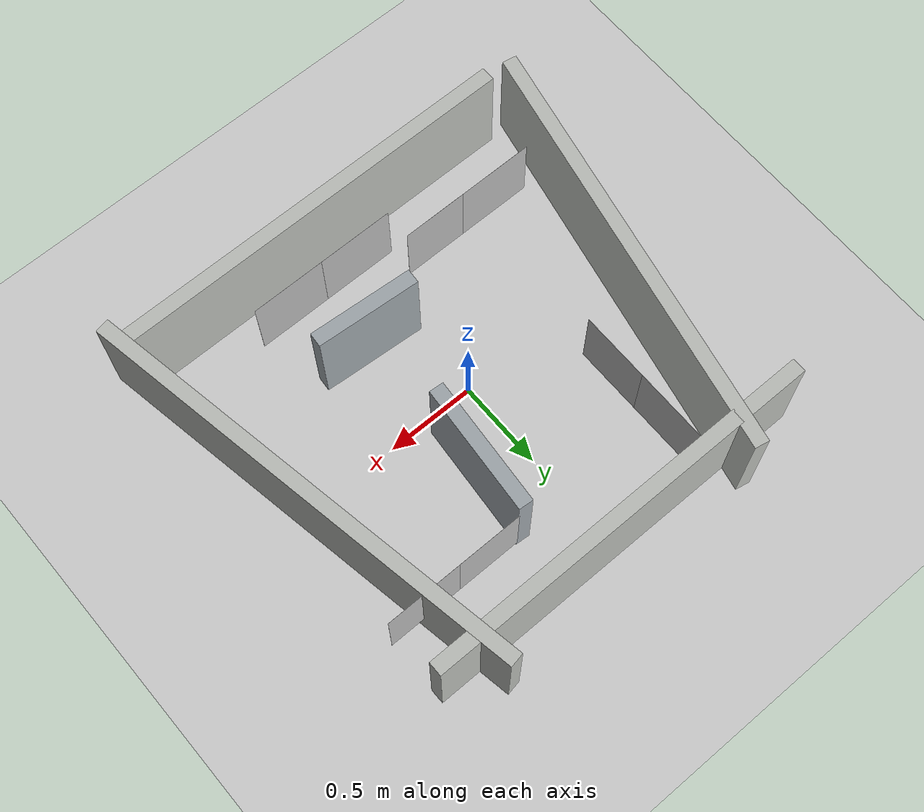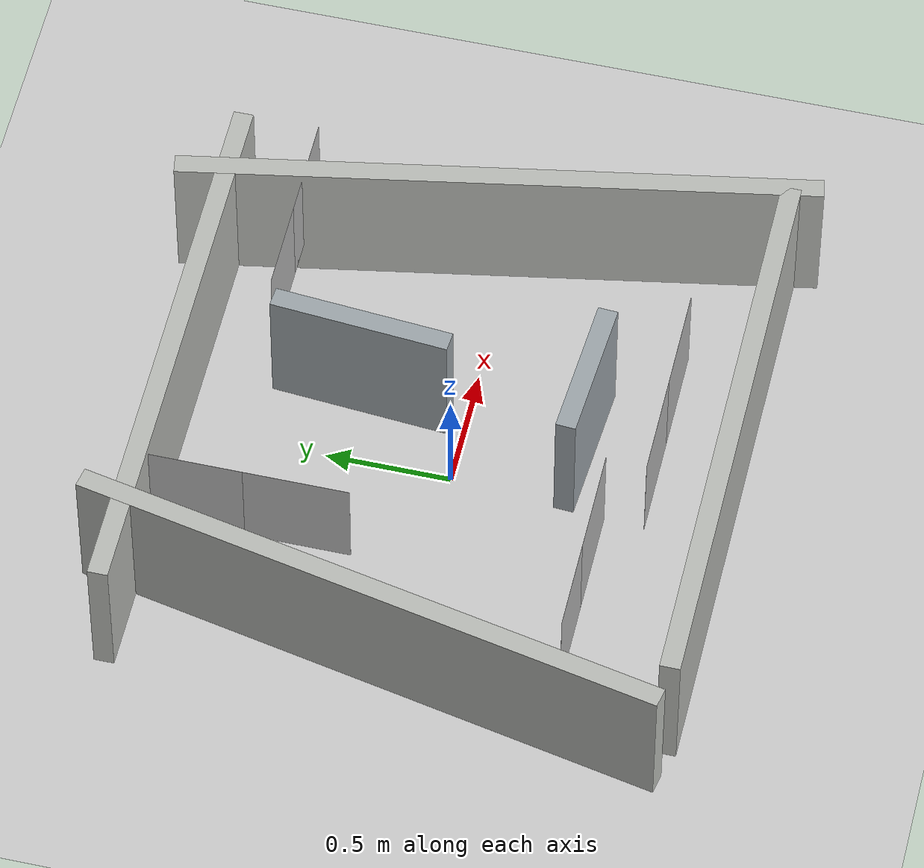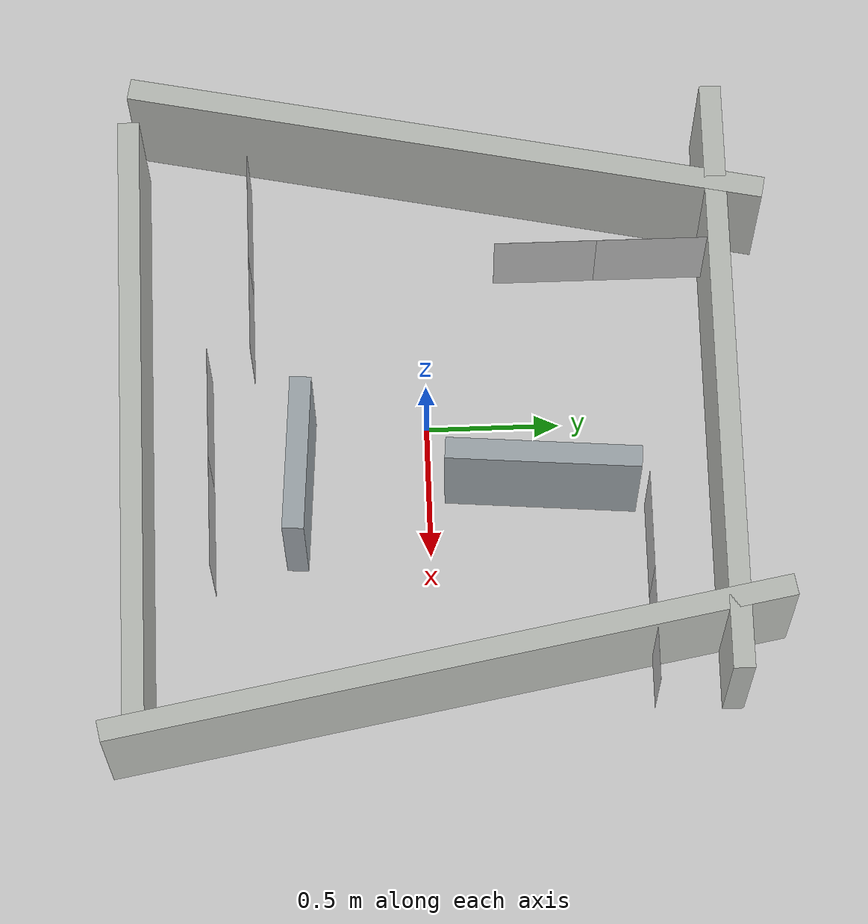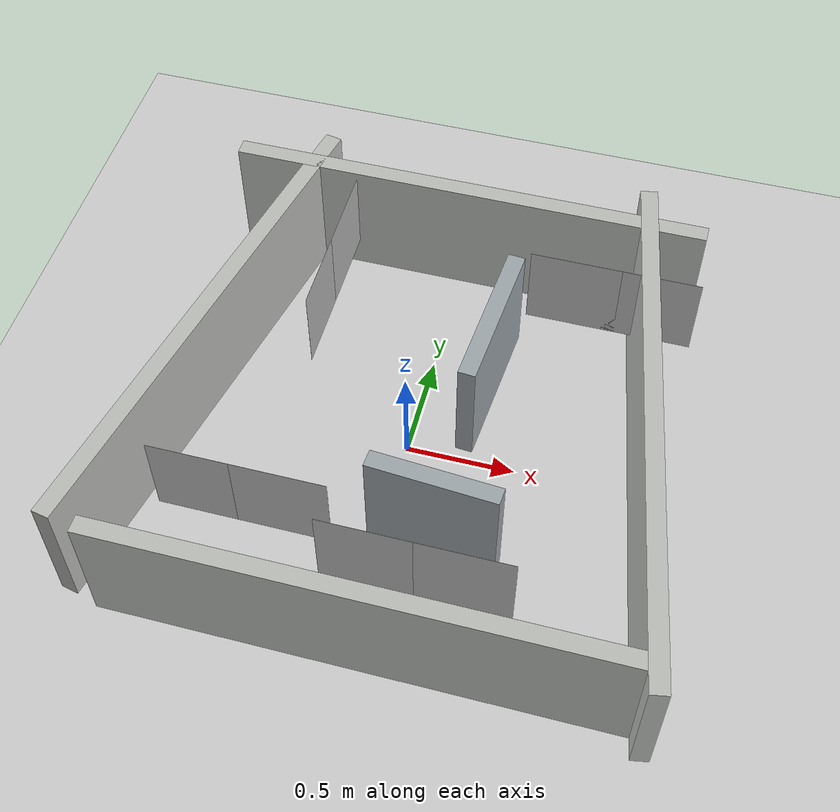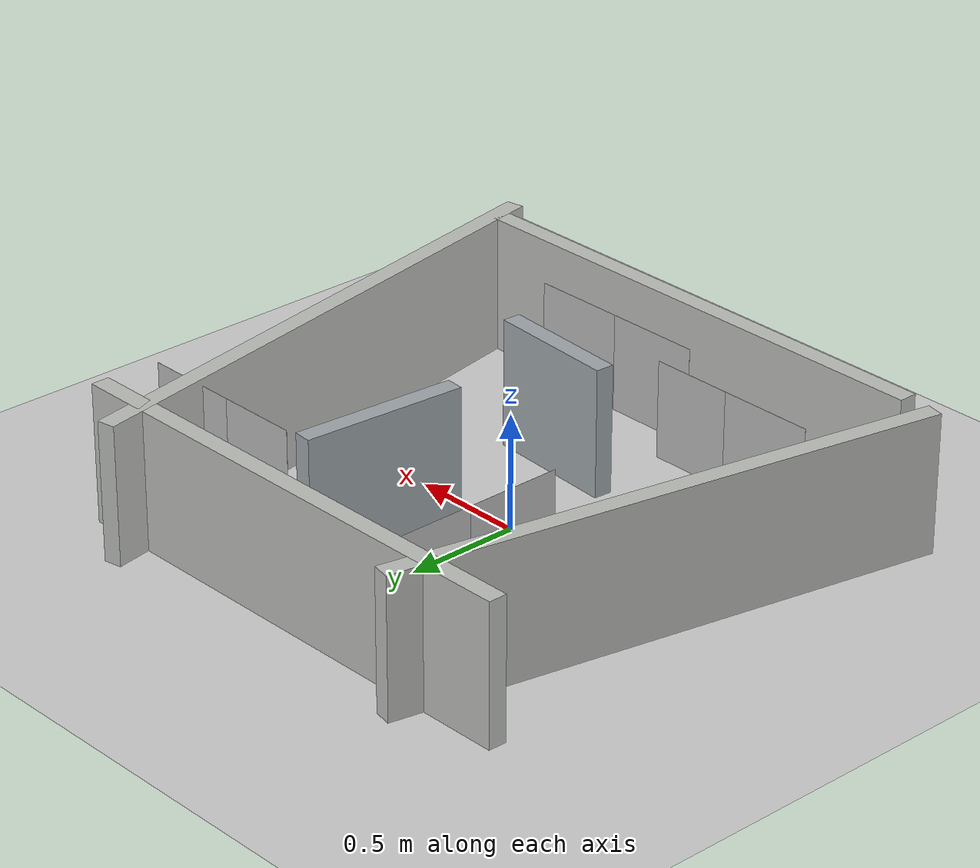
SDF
<?xml version="1.0" ?>
<sdf version="1.6">
  <world name="event_guide_world">
    <physics name="default_physics" type="ode">
      <max_step_size>0.001</max_step_size>
      <real_time_factor>1.0</real_time_factor>
      <real_time_update_rate>1000</real_time_update_rate>
    </physics>

    <scene>
      <ambient>0.65 0.65 0.65 1</ambient>
      <background>0.78 0.82 0.86 1</background>
    </scene>

    <include>
      <uri>model://sun</uri>
    </include>

    <include>
      <uri>model://ground_plane</uri>
    </include>

    <model name="event_map_walls">
      <static>true</static>
      <link name="walls">
        <collision name="left_diagonal_wall_collision">
          <pose>-0.95 0.10 0.30 0 0 -0.20</pose>
          <geometry><box><size>0.08 2.40 0.60</size></box></geometry>
        </collision>
        <visual name="left_diagonal_wall_visual">
          <pose>-0.95 0.10 0.30 0 0 -0.20</pose>
          <geometry><box><size>0.08 2.40 0.60</size></box></geometry>
          <material><ambient>0.73 0.74 0.72 1</ambient><diffuse>0.73 0.74 0.72 1</diffuse></material>
        </visual>

        <collision name="right_diagonal_wall_collision">
          <pose>1.05 0.05 0.30 0 0 0.18</pose>
          <geometry><box><size>0.08 2.55 0.60</size></box></geometry>
        </collision>
        <visual name="right_diagonal_wall_visual">
          <pose>1.05 0.05 0.30 0 0 0.18</pose>
          <geometry><box><size>0.08 2.55 0.60</size></box></geometry>
          <material><ambient>0.73 0.74 0.72 1</ambient><diffuse>0.73 0.74 0.72 1</diffuse></material>
        </visual>

        <collision name="top_wall_collision">
          <pose>0.00 1.10 0.30 0 0 0</pose>
          <geometry><box><size>2.25 0.08 0.60</size></box></geometry>
        </collision>
        <visual name="top_wall_visual">
          <pose>0.00 1.10 0.30 0 0 0</pose>
          <geometry><box><size>2.25 0.08 0.60</size></box></geometry>
          <material><ambient>0.73 0.74 0.72 1</ambient><diffuse>0.73 0.74 0.72 1</diffuse></material>
        </visual>

        <collision name="bottom_wall_collision">
          <pose>0.10 -1.08 0.30 0 0 0</pose>
          <geometry><box><size>2.30 0.08 0.60</size></box></geometry>
        </collision>
        <visual name="bottom_wall_visual">
          <pose>0.10 -1.08 0.30 0 0 0</pose>
          <geometry><box><size>2.30 0.08 0.60</size></box></geometry>
          <material><ambient>0.73 0.74 0.72 1</ambient><diffuse>0.73 0.74 0.72 1</diffuse></material>
        </visual>

        <collision name="center_partition_collision">
          <pose>0.28 0.42 0.28 0 0 -0.08</pose>
          <geometry><box><size>0.08 0.72 0.56</size></box></geometry>
        </collision>
        <visual name="center_partition_visual">
          <pose>0.28 0.42 0.28 0 0 -0.08</pose>
          <geometry><box><size>0.08 0.72 0.56</size></box></geometry>
          <material><ambient>0.62 0.65 0.67 1</ambient><diffuse>0.62 0.65 0.67 1</diffuse></material>
        </visual>

        <collision name="lower_partition_collision">
          <pose>0.25 -0.48 0.28 0 0 1.50</pose>
          <geometry><box><size>0.08 0.58 0.56</size></box></geometry>
        </collision>
        <visual name="lower_partition_visual">
          <pose>0.25 -0.48 0.28 0 0 1.50</pose>
          <geometry><box><size>0.08 0.58 0.56</size></box></geometry>
          <material><ambient>0.62 0.65 0.67 1</ambient><diffuse>0.62 0.65 0.67 1</diffuse></material>
        </visual>
      </link>
    </model>

    <model name="stand_marker_11">
      <static>true</static>
      <pose>-0.72 -0.66 0.36 0 0 3.1416</pose>
      <link name="board">
        <collision name="collision"><geometry><box><size>0.46 0.03 0.46</size></box></geometry></collision>
        <visual name="marker"><pose>0 -0.018 0 0 0 0</pose><geometry><plane><normal>0 -1 0</normal><size>0.42 0.42</size></plane></geometry><material><script><uri>file://media/materials/scripts/event_guide_markers.material</uri><name>EventGuide/Aruco11</name></script></material></visual>
      </link>
    </model>

    <model name="stand_marker_12">
      <static>true</static>
      <pose>-0.36 -0.66 0.36 0 0 3.1416</pose>
      <link name="board">
        <collision name="collision"><geometry><box><size>0.46 0.03 0.46</size></box></geometry></collision>
        <visual name="marker"><pose>0 -0.018 0 0 0 0</pose><geometry><plane><normal>0 -1 0</normal><size>0.42 0.42</size></plane></geometry><material><script><uri>file://media/materials/scripts/event_guide_markers.material</uri><name>EventGuide/Aruco12</name></script></material></visual>
      </link>
    </model>

    <model name="stand_marker_21">
      <static>true</static>
      <pose>0.05 -0.82 0.36 0 0 3.1416</pose>
      <link name="board">
        <collision name="collision"><geometry><box><size>0.46 0.03 0.46</size></box></geometry></collision>
        <visual name="marker"><pose>0 -0.018 0 0 0 0</pose><geometry><plane><normal>0 -1 0</normal><size>0.42 0.42</size></plane></geometry><material><script><uri>file://media/materials/scripts/event_guide_markers.material</uri><name>EventGuide/Aruco21</name></script></material></visual>
      </link>
    </model>

    <model name="stand_marker_22">
      <static>true</static>
      <pose>0.46 -0.82 0.36 0 0 3.1416</pose>
      <link name="board">
        <collision name="collision"><geometry><box><size>0.46 0.03 0.46</size></box></geometry></collision>
        <visual name="marker"><pose>0 -0.018 0 0 0 0</pose><geometry><plane><normal>0 -1 0</normal><size>0.42 0.42</size></plane></geometry><material><script><uri>file://media/materials/scripts/event_guide_markers.material</uri><name>EventGuide/Aruco22</name></script></material></visual>
      </link>
    </model>

    <model name="stand_marker_31">
      <static>true</static>
      <pose>0.58 0.82 0.36 0 0 0</pose>
      <link name="board">
        <collision name="collision"><geometry><box><size>0.46 0.03 0.46</size></box></geometry></collision>
        <visual name="marker"><pose>0 -0.018 0 0 0 0</pose><geometry><plane><normal>0 -1 0</normal><size>0.42 0.42</size></plane></geometry><material><script><uri>file://media/materials/scripts/event_guide_markers.material</uri><name>EventGuide/Aruco31</name></script></material></visual>
      </link>
    </model>

    <model name="stand_marker_32">
      <static>true</static>
      <pose>0.94 0.82 0.36 0 0 0</pose>
      <link name="board">
        <collision name="collision"><geometry><box><size>0.46 0.03 0.46</size></box></geometry></collision>
        <visual name="marker"><pose>0 -0.018 0 0 0 0</pose><geometry><plane><normal>0 -1 0</normal><size>0.42 0.42</size></plane></geometry><material><script><uri>file://media/materials/scripts/event_guide_markers.material</uri><name>EventGuide/Aruco32</name></script></material></visual>
      </link>
    </model>

    <model name="stand_marker_41">
      <static>true</static>
      <pose>-0.55 0.48 0.36 0 0 1.5708</pose>
      <link name="board">
        <collision name="collision"><geometry><box><size>0.46 0.03 0.46</size></box></geometry></collision>
        <visual name="marker"><pose>0 -0.018 0 0 0 0</pose><geometry><plane><normal>0 -1 0</normal><size>0.42 0.42</size></plane></geometry><material><script><uri>file://media/materials/scripts/event_guide_markers.material</uri><name>EventGuide/Aruco41</name></script></material></visual>
      </link>
    </model>

    <model name="stand_marker_42">
      <static>true</static>
      <pose>-0.55 0.86 0.36 0 0 1.5708</pose>
      <link name="board">
        <collision name="collision"><geometry><box><size>0.46 0.03 0.46</size></box></geometry></collision>
        <visual name="marker"><pose>0 -0.018 0 0 0 0</pose><geometry><plane><normal>0 -1 0</normal><size>0.42 0.42</size></plane></geometry><material><script><uri>file://media/materials/scripts/event_guide_markers.material</uri><name>EventGuide/Aruco42</name></script></material></visual>
      </link>
    </model>
  </world>
</sdf>
